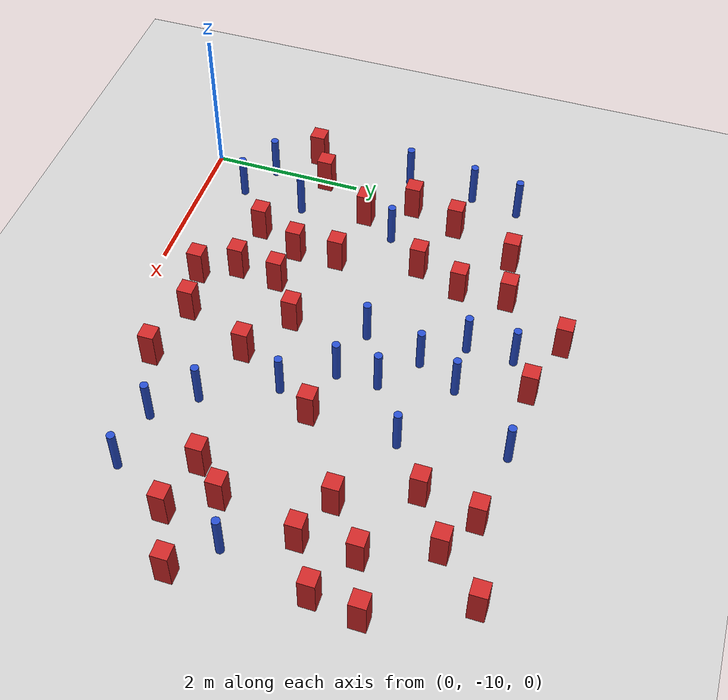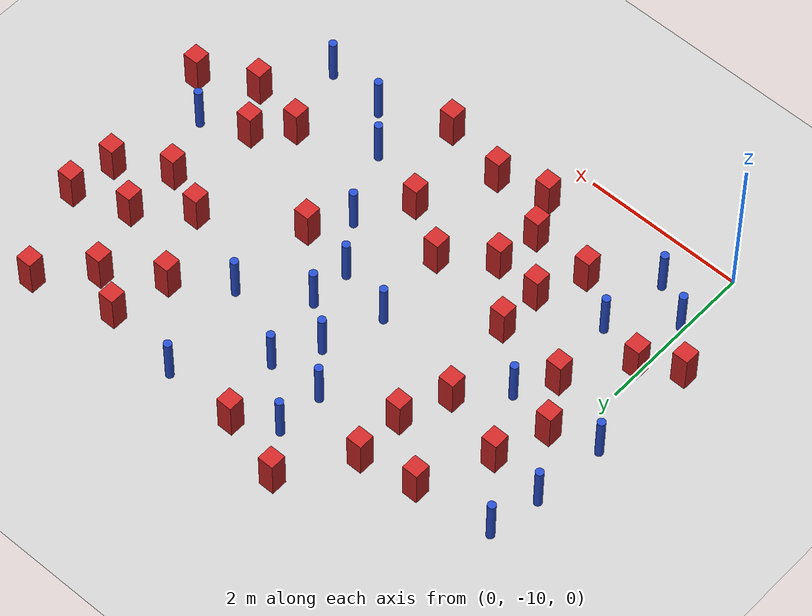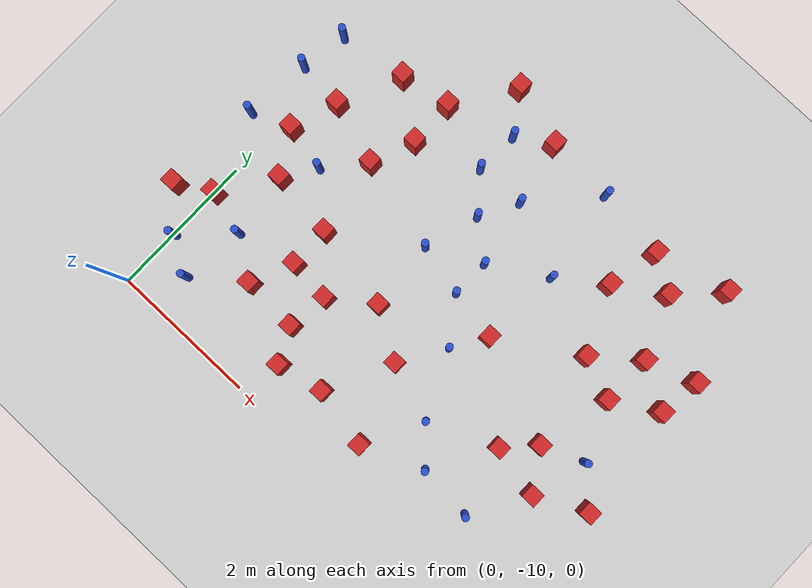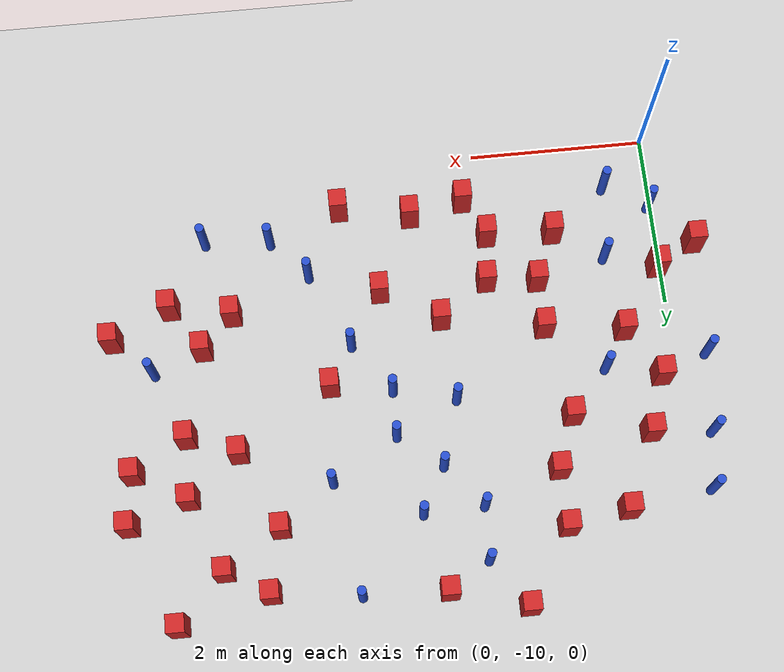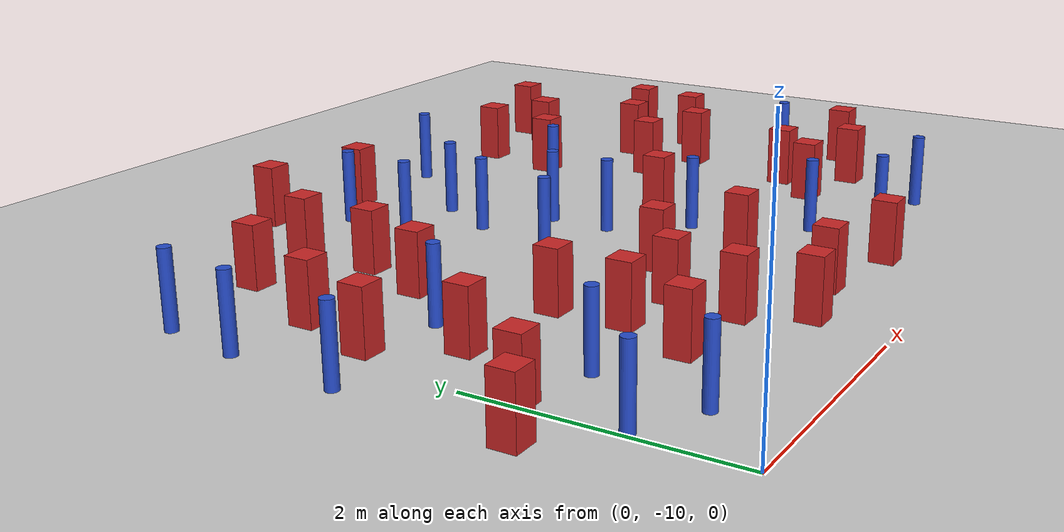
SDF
<sdf version="1.6">
 <world name="default">
  <model name="ground_plane">
   <static>1</static>
   <link name="link">
    <collision name="collision">
     <geometry><plane><normal>0 0 1</normal><size>100 100</size></plane></geometry>
     <surface><friction><ode><mu>100</mu><mu2>50</mu2></ode></friction></surface>
    </collision>
    <visual name="visual">
     <cast_shadows>0</cast_shadows>
     <geometry><plane><normal>0 0 1</normal><size>100 100</size></plane></geometry>
     <material>
      <ambient>1.0 1.0 1.0 1.0</ambient>
      <diffuse>0.8 0.8 0.8 1.0</diffuse>
      <specular>0.01 0.01 0.01 1.000000</specular>
     </material>
    </visual>
   </link>
  </model>
  <model name="square_post_obstacle10">
   <static>true</static>
   <pose>0.0550783046898 -8.40257800408 1.91545236811e-07 -7.35059704564e-06 1.12565212e-07 2.39332434364e-05</pose>
   <link name="link">
    <pose>0 0 0.25 0 -0 0</pose>
    <inertial>
     <mass>100</mass>
     <inertia>
      <ixx>0.166667</ixx>
      <ixy>0</ixy>
      <ixz>0</ixz>
      <iyy>0.166667</iyy>
      <iyz>0</iyz>
      <izz>0.166667</izz>
     </inertia>
    </inertial>
    <collision name="collision"><geometry><box><size>.2 .2 .5</size></box></geometry></collision>
    <visual name="visual">
     <geometry><box><size>.2 .2 .5</size></box></geometry>
     <material>
      <script><name>Gazebo/Red</name><uri>file://media/materials/scripts/gazebo.material</uri></script>
     </material>
    </visual>
   </link>
  </model>
  <model name="square_post_obstacle16">
   <static>true</static>
   <pose>1.46860966695 -6.16280772476 1.91545236811e-07 -7.35059704564e-06 1.12565212e-07 2.39332434364e-05</pose>
   <link name="link">
    <pose>0 0 0.25 0 -0 0</pose>
    <inertial>
     <mass>100</mass>
     <inertia>
      <ixx>0.166667</ixx>
      <ixy>0</ixy>
      <ixz>0</ixz>
      <iyy>0.166667</iyy>
      <iyz>0</iyz>
      <izz>0.166667</izz>
     </inertia>
    </inertial>
    <collision name="collision"><geometry><box><size>.2 .2 .5</size></box></geometry></collision>
    <visual name="visual">
     <geometry><box><size>.2 .2 .5</size></box></geometry>
     <material>
      <script><name>Gazebo/Red</name><uri>file://media/materials/scripts/gazebo.material</uri></script>
     </material>
    </visual>
   </link>
  </model>
  <model name="square_post_obstacle19">
   <static>true</static>
   <pose>2.57718396046 -8.00460723232 1.91545236811e-07 -7.35059704564e-06 1.12565212e-07 2.39332434364e-05</pose>
   <link name="link">
    <pose>0 0 0.25 0 -0 0</pose>
    <inertial>
     <mass>100</mass>
     <inertia>
      <ixx>0.166667</ixx>
      <ixy>0</ixy>
      <ixz>0</ixz>
      <iyy>0.166667</iyy>
      <iyz>0</iyz>
      <izz>0.166667</izz>
     </inertia>
    </inertial>
    <collision name="collision"><geometry><box><size>.2 .2 .5</size></box></geometry></collision>
    <visual name="visual">
     <geometry><box><size>.2 .2 .5</size></box></geometry>
     <material>
      <script><name>Gazebo/Red</name><uri>file://media/materials/scripts/gazebo.material</uri></script>
     </material>
    </visual>
   </link>
  </model>
  <model name="pole_obstacle15">
   <static>true</static>
   <pose>5.1811139625 -9.17330770869 7.38925637345e-09 -8.471706928e-08 1.24976765081e-08 -1.74513093015e-07</pose>
   <link name="link">
    <pose>0 0 0.3 0 -0 0</pose>
    <inertial>
     <mass>1</mass>
     <inertia><ixx>0.145833</ixx><ixy>0</ixy><ixz>0</ixz><iyy>0.145833</iyy><iyz>0</iyz><izz>0.125</izz></inertia>
    </inertial>
    <collision name="collision">
     <geometry><cylinder><radius>0.05</radius><length>.6</length></cylinder></geometry>
    </collision>
    <visual name="visual">
     <geometry><cylinder><radius>0.05</radius><length>.6</length></cylinder></geometry>
     <material>
      <script><name>Gazebo/Blue</name><uri>file://media/materials/scripts/gazebo.material</uri></script>
     </material>
    </visual>
   </link>
  </model>
  <model name="square_post_obstacle24">
   <static>true</static>
   <pose>6.09427884108 -6.54319197838 1.91545236811e-07 -7.35059704564e-06 1.12565212e-07 2.39332434364e-05</pose>
   <link name="link">
    <pose>0 0 0.25 0 -0 0</pose>
    <inertial>
     <mass>100</mass>
     <inertia>
      <ixx>0.166667</ixx>
      <ixy>0</ixy>
      <ixz>0</ixz>
      <iyy>0.166667</iyy>
      <iyz>0</iyz>
      <izz>0.166667</izz>
     </inertia>
    </inertial>
    <collision name="collision"><geometry><box><size>.2 .2 .5</size></box></geometry></collision>
    <visual name="visual">
     <geometry><box><size>.2 .2 .5</size></box></geometry>
     <material>
      <script><name>Gazebo/Red</name><uri>file://media/materials/scripts/gazebo.material</uri></script>
     </material>
    </visual>
   </link>
  </model>
  <model name="pole_obstacle31">
   <static>true</static>
   <pose>3.72274522592 -4.98106664844 7.38925637345e-09 -8.47170692798e-08 1.24976765033e-08 -1.74513093019e-07</pose>
   <link name="link">
    <pose>0 0 0.3 0 -0 0</pose>
    <inertial>
     <mass>1</mass>
     <inertia><ixx>0.145833</ixx><ixy>0</ixy><ixz>0</ixz><iyy>0.145833</iyy><iyz>0</iyz><izz>0.125</izz></inertia>
    </inertial>
    <collision name="collision">
     <geometry><cylinder><radius>0.05</radius><length>.6</length></cylinder></geometry>
    </collision>
    <visual name="visual">
     <geometry><cylinder><radius>0.05</radius><length>.6</length></cylinder></geometry>
     <material>
      <script><name>Gazebo/Blue</name><uri>file://media/materials/scripts/gazebo.material</uri></script>
     </material>
    </visual>
   </link>
  </model>
  <model name="pole_obstacle32">
   <static>true</static>
   <pose>-0.169294901948 -5.77846933836 7.38925637345e-09 -8.47170692799e-08 1.24976765043e-08 -1.74513093019e-07</pose>
   <link name="link">
    <pose>0 0 0.3 0 -0 0</pose>
    <inertial>
     <mass>1</mass>
     <inertia><ixx>0.145833</ixx><ixy>0</ixy><ixz>0</ixz><iyy>0.145833</iyy><iyz>0</iyz><izz>0.125</izz></inertia>
    </inertial>
    <collision name="collision">
     <geometry><cylinder><radius>0.05</radius><length>.6</length></cylinder></geometry>
    </collision>
    <visual name="visual">
     <geometry><cylinder><radius>0.05</radius><length>.6</length></cylinder></geometry>
     <material>
      <script><name>Gazebo/Blue</name><uri>file://media/materials/scripts/gazebo.material</uri></script>
     </material>
    </visual>
   </link>
  </model>
  <model name="square_post_obstacle36">
   <static>true</static>
   <pose>2.18840104832 -9.41564404148 1.91545236811e-07 -7.35059704564e-06 1.12565212e-07 2.39332434364e-05</pose>
   <link name="link">
    <pose>0 0 0.25 0 -0 0</pose>
    <inertial>
     <mass>100</mass>
     <inertia>
      <ixx>0.166667</ixx>
      <ixy>0</ixy>
      <ixz>0</ixz>
      <iyy>0.166667</iyy>
      <iyz>0</iyz>
      <izz>0.166667</izz>
     </inertia>
    </inertial>
    <collision name="collision"><geometry><box><size>.2 .2 .5</size></box></geometry></collision>
    <visual name="visual">
     <geometry><box><size>.2 .2 .5</size></box></geometry>
     <material>
      <script><name>Gazebo/Red</name><uri>file://media/materials/scripts/gazebo.material</uri></script>
     </material>
    </visual>
   </link>
  </model>
  <model name="pole_obstacle42">
   <static>true</static>
   <pose>3.93710257058 -6.24078712769 7.38925637345e-09 -8.47170692798e-08 1.24976765033e-08 -1.74513093019e-07</pose>
   <link name="link">
    <pose>0 0 0.3 0 -0 0</pose>
    <inertial>
     <mass>1</mass>
     <inertia><ixx>0.145833</ixx><ixy>0</ixy><ixz>0</ixz><iyy>0.145833</iyy><iyz>0</iyz><izz>0.125</izz></inertia>
    </inertial>
    <collision name="collision">
     <geometry><cylinder><radius>0.05</radius><length>.6</length></cylinder></geometry>
    </collision>
    <visual name="visual">
     <geometry><cylinder><radius>0.05</radius><length>.6</length></cylinder></geometry>
     <material>
      <script><name>Gazebo/Blue</name><uri>file://media/materials/scripts/gazebo.material</uri></script>
     </material>
    </visual>
   </link>
  </model>
  <model name="square_post_obstacle42">
   <static>true</static>
   <pose>5.677763658 -4.84844297072 1.91545236811e-07 -7.35059704564e-06 1.12565212e-07 2.39332434364e-05</pose>
   <link name="link">
    <pose>0 0 0.25 0 -0 0</pose>
    <inertial>
     <mass>100</mass>
     <inertia>
      <ixx>0.166667</ixx>
      <ixy>0</ixy>
      <ixz>0</ixz>
      <iyy>0.166667</iyy>
      <iyz>0</iyz>
      <izz>0.166667</izz>
     </inertia>
    </inertial>
    <collision name="collision"><geometry><box><size>.2 .2 .5</size></box></geometry></collision>
    <visual name="visual">
     <geometry><box><size>.2 .2 .5</size></box></geometry>
     <material>
      <script><name>Gazebo/Red</name><uri>file://media/materials/scripts/gazebo.material</uri></script>
     </material>
    </visual>
   </link>
  </model>
  <model name="square_post_obstacle53">
   <static>true</static>
   <pose>0.402474292752 -6.48558767274 1.91545236811e-07 -7.35059704564e-06 1.12565212e-07 2.39332434364e-05</pose>
   <link name="link">
    <pose>0 0 0.25 0 -0 0</pose>
    <inertial>
     <mass>100</mass>
     <inertia>
      <ixx>0.166667</ixx>
      <ixy>0</ixy>
      <ixz>0</ixz>
      <iyy>0.166667</iyy>
      <iyz>0</iyz>
      <izz>0.166667</izz>
     </inertia>
    </inertial>
    <collision name="collision"><geometry><box><size>.2 .2 .5</size></box></geometry></collision>
    <visual name="visual">
     <geometry><box><size>.2 .2 .5</size></box></geometry>
     <material>
      <script><name>Gazebo/Red</name><uri>file://media/materials/scripts/gazebo.material</uri></script>
     </material>
    </visual>
   </link>
  </model>
  <model name="pole_obstacle56">
   <static>true</static>
   <pose>0.640084541509 -8.56741284853 7.38925637345e-09 -8.47170692797e-08 1.249767648e-08 -1.74513093032e-07</pose>
   <link name="link">
    <pose>0 0 0.3 0 -0 0</pose>
    <inertial>
     <mass>1</mass>
     <inertia><ixx>0.145833</ixx><ixy>0</ixy><ixz>0</ixz><iyy>0.145833</iyy><iyz>0</iyz><izz>0.125</izz></inertia>
    </inertial>
    <collision name="collision">
     <geometry><cylinder><radius>0.05</radius><length>.6</length></cylinder></geometry>
    </collision>
    <visual name="visual">
     <geometry><cylinder><radius>0.05</radius><length>.6</length></cylinder></geometry>
     <material>
      <script><name>Gazebo/Blue</name><uri>file://media/materials/scripts/gazebo.material</uri></script>
     </material>
    </visual>
   </link>
  </model>
  <model name="pole_obstacle59">
   <static>true</static>
   <pose>5.82953276097 -7.66077457095 7.38925637345e-09 -8.47170692796e-08 1.24976764786e-08 -1.74513093032e-07</pose>
   <link name="link">
    <pose>0 0 0.3 0 -0 0</pose>
    <inertial>
     <mass>1</mass>
     <inertia><ixx>0.145833</ixx><ixy>0</ixy><ixz>0</ixz><iyy>0.145833</iyy><iyz>0</iyz><izz>0.125</izz></inertia>
    </inertial>
    <collision name="collision">
     <geometry><cylinder><radius>0.05</radius><length>.6</length></cylinder></geometry>
    </collision>
    <visual name="visual">
     <geometry><cylinder><radius>0.05</radius><length>.6</length></cylinder></geometry>
     <material>
      <script><name>Gazebo/Blue</name><uri>file://media/materials/scripts/gazebo.material</uri></script>
     </material>
    </visual>
   </link>
  </model>
  <model name="pole_obstacle64">
   <static>true</static>
   <pose>4.43379019858 -9.10965924487 7.38925637345e-09 -8.471706928e-08 1.24976765081e-08 -1.74513093015e-07</pose>
   <link name="link">
    <pose>0 0 0.3 0 -0 0</pose>
    <inertial>
     <mass>1</mass>
     <inertia><ixx>0.145833</ixx><ixy>0</ixy><ixz>0</ixz><iyy>0.145833</iyy><iyz>0</iyz><izz>0.125</izz></inertia>
    </inertial>
    <collision name="collision">
     <geometry><cylinder><radius>0.05</radius><length>.6</length></cylinder></geometry>
    </collision>
    <visual name="visual">
     <geometry><cylinder><radius>0.05</radius><length>.6</length></cylinder></geometry>
     <material>
      <script><name>Gazebo/Blue</name><uri>file://media/materials/scripts/gazebo.material</uri></script>
     </material>
    </visual>
   </link>
  </model>
  <model name="square_post_obstacle70">
   <static>true</static>
   <pose>1.9660436417 -4.72021212821 1.91545236811e-07 -7.35059704564e-06 1.12565212e-07 2.39332434364e-05</pose>
   <link name="link">
    <pose>0 0 0.25 0 -0 0</pose>
    <inertial>
     <mass>100</mass>
     <inertia>
      <ixx>0.166667</ixx>
      <ixy>0</ixy>
      <ixz>0</ixz>
      <iyy>0.166667</iyy>
      <iyz>0</iyz>
      <izz>0.166667</izz>
     </inertia>
    </inertial>
    <collision name="collision"><geometry><box><size>.2 .2 .5</size></box></geometry></collision>
    <visual name="visual">
     <geometry><box><size>.2 .2 .5</size></box></geometry>
     <material>
      <script><name>Gazebo/Red</name><uri>file://media/materials/scripts/gazebo.material</uri></script>
     </material>
    </visual>
   </link>
  </model>
  <model name="square_post_obstacle75">
   <static>true</static>
   <pose>0.538428384571 -7.68666459709 1.91545236811e-07 -7.35059704564e-06 1.12565212e-07 2.39332434364e-05</pose>
   <link name="link">
    <pose>0 0 0.25 0 -0 0</pose>
    <inertial>
     <mass>100</mass>
     <inertia>
      <ixx>0.166667</ixx>
      <ixy>0</ixy>
      <ixz>0</ixz>
      <iyy>0.166667</iyy>
      <iyz>0</iyz>
      <izz>0.166667</izz>
     </inertia>
    </inertial>
    <collision name="collision"><geometry><box><size>.2 .2 .5</size></box></geometry></collision>
    <visual name="visual">
     <geometry><box><size>.2 .2 .5</size></box></geometry>
     <material>
      <script><name>Gazebo/Red</name><uri>file://media/materials/scripts/gazebo.material</uri></script>
     </material>
    </visual>
   </link>
  </model>
  <model name="square_post_obstacle76">
   <static>true</static>
   <pose>6.16633396777 -5.97250795258 1.91545236811e-07 -7.35059704564e-06 1.12565212e-07 2.39332434364e-05</pose>
   <link name="link">
    <pose>0 0 0.25 0 -0 0</pose>
    <inertial>
     <mass>100</mass>
     <inertia>
      <ixx>0.166667</ixx>
      <ixy>0</ixy>
      <ixz>0</ixz>
      <iyy>0.166667</iyy>
      <iyz>0</iyz>
      <izz>0.166667</izz>
     </inertia>
    </inertial>
    <collision name="collision"><geometry><box><size>.2 .2 .5</size></box></geometry></collision>
    <visual name="visual">
     <geometry><box><size>.2 .2 .5</size></box></geometry>
     <material>
      <script><name>Gazebo/Red</name><uri>file://media/materials/scripts/gazebo.material</uri></script>
     </material>
    </visual>
   </link>
  </model>
  <model name="square_post_obstacle77">
   <static>true</static>
   <pose>4.91559397263 -8.27191296884 1.91545236811e-07 -7.35059704564e-06 1.12565212e-07 2.39332434364e-05</pose>
   <link name="link">
    <pose>0 0 0.25 0 -0 0</pose>
    <inertial>
     <mass>100</mass>
     <inertia>
      <ixx>0.166667</ixx>
      <ixy>0</ixy>
      <ixz>0</ixz>
      <iyy>0.166667</iyy>
      <iyz>0</iyz>
      <izz>0.166667</izz>
     </inertia>
    </inertial>
    <collision name="collision"><geometry><box><size>.2 .2 .5</size></box></geometry></collision>
    <visual name="visual">
     <geometry><box><size>.2 .2 .5</size></box></geometry>
     <material>
      <script><name>Gazebo/Red</name><uri>file://media/materials/scripts/gazebo.material</uri></script>
     </material>
    </visual>
   </link>
  </model>
  <model name="pole_obstacle88">
   <static>true</static>
   <pose>3.19655545939 -6.69809416523 7.38925637345e-09 -8.47170692798e-08 1.24976765033e-08 -1.74513093019e-07</pose>
   <link name="link">
    <pose>0 0 0.3 0 -0 0</pose>
    <inertial>
     <mass>1</mass>
     <inertia><ixx>0.145833</ixx><ixy>0</ixy><ixz>0</ixz><iyy>0.145833</iyy><iyz>0</iyz><izz>0.125</izz></inertia>
    </inertial>
    <collision name="collision">
     <geometry><cylinder><radius>0.05</radius><length>.6</length></cylinder></geometry>
    </collision>
    <visual name="visual">
     <geometry><cylinder><radius>0.05</radius><length>.6</length></cylinder></geometry>
     <material>
      <script><name>Gazebo/Blue</name><uri>file://media/materials/scripts/gazebo.material</uri></script>
     </material>
    </visual>
   </link>
  </model>
  <model name="pole_obstacle91">
   <static>true</static>
   <pose>2.31739381288 -5.83164720761 7.38925637345e-09 -8.47170692798e-08 1.24976765033e-08 -1.74513093019e-07</pose>
   <link name="link">
    <pose>0 0 0.3 0 -0 0</pose>
    <inertial>
     <mass>1</mass>
     <inertia><ixx>0.145833</ixx><ixy>0</ixy><ixz>0</ixz><iyy>0.145833</iyy><iyz>0</iyz><izz>0.125</izz></inertia>
    </inertial>
    <collision name="collision">
     <geometry><cylinder><radius>0.05</radius><length>.6</length></cylinder></geometry>
    </collision>
    <visual name="visual">
     <geometry><cylinder><radius>0.05</radius><length>.6</length></cylinder></geometry>
     <material>
      <script><name>Gazebo/Blue</name><uri>file://media/materials/scripts/gazebo.material</uri></script>
     </material>
    </visual>
   </link>
  </model>
  <model name="pole_obstacle94">
   <static>true</static>
   <pose>0.0458947263798 -9.14970774715 7.38925637345e-09 -8.47170692796e-08 1.24976764747e-08 -1.74513093035e-07</pose>
   <link name="link">
    <pose>0 0 0.3 0 -0 0</pose>
    <inertial>
     <mass>1</mass>
     <inertia><ixx>0.145833</ixx><ixy>0</ixy><ixz>0</ixz><iyy>0.145833</iyy><iyz>0</iyz><izz>0.125</izz></inertia>
    </inertial>
    <collision name="collision">
     <geometry><cylinder><radius>0.05</radius><length>.6</length></cylinder></geometry>
    </collision>
    <visual name="visual">
     <geometry><cylinder><radius>0.05</radius><length>.6</length></cylinder></geometry>
     <material>
      <script><name>Gazebo/Blue</name><uri>file://media/materials/scripts/gazebo.material</uri></script>
     </material>
    </visual>
   </link>
  </model>
  <model name="square_post_obstacle84">
   <static>true</static>
   <pose>5.50253061422 -6.208055663 1.91545236811e-07 -7.35059704564e-06 1.12565212e-07 2.39332434364e-05</pose>
   <link name="link">
    <pose>0 0 0.25 0 -0 0</pose>
    <inertial>
     <mass>100</mass>
     <inertia>
      <ixx>0.166667</ixx>
      <ixy>0</ixy>
      <ixz>0</ixz>
      <iyy>0.166667</iyy>
      <iyz>0</iyz>
      <izz>0.166667</izz>
     </inertia>
    </inertial>
    <collision name="collision"><geometry><box><size>.2 .2 .5</size></box></geometry></collision>
    <visual name="visual">
     <geometry><box><size>.2 .2 .5</size></box></geometry>
     <material>
      <script><name>Gazebo/Red</name><uri>file://media/materials/scripts/gazebo.material</uri></script>
     </material>
    </visual>
   </link>
  </model>
  <model name="square_post_obstacle86">
   <static>true</static>
   <pose>1.24362846173 -6.75262196878 1.91545236811e-07 -7.35059704564e-06 1.12565212e-07 2.39332434364e-05</pose>
   <link name="link">
    <pose>0 0 0.25 0 -0 0</pose>
    <inertial>
     <mass>100</mass>
     <inertia>
      <ixx>0.166667</ixx>
      <ixy>0</ixy>
      <ixz>0</ixz>
      <iyy>0.166667</iyy>
      <iyz>0</iyz>
      <izz>0.166667</izz>
     </inertia>
    </inertial>
    <collision name="collision"><geometry><box><size>.2 .2 .5</size></box></geometry></collision>
    <visual name="visual">
     <geometry><box><size>.2 .2 .5</size></box></geometry>
     <material>
      <script><name>Gazebo/Red</name><uri>file://media/materials/scripts/gazebo.material</uri></script>
     </material>
    </visual>
   </link>
  </model>
  <model name="pole_obstacle97">
   <static>true</static>
   <pose>0.539371456783 -9.42880603413 7.38925637345e-09 -8.47170692797e-08 1.24976764765e-08 -1.74513093034e-07</pose>
   <link name="link">
    <pose>0 0 0.3 0 -0 0</pose>
    <inertial>
     <mass>1</mass>
     <inertia><ixx>0.145833</ixx><ixy>0</ixy><ixz>0</ixz><iyy>0.145833</iyy><iyz>0</iyz><izz>0.125</izz></inertia>
    </inertial>
    <collision name="collision">
     <geometry><cylinder><radius>0.05</radius><length>.6</length></cylinder></geometry>
    </collision>
    <visual name="visual">
     <geometry><cylinder><radius>0.05</radius><length>.6</length></cylinder></geometry>
     <material>
      <script><name>Gazebo/Blue</name><uri>file://media/materials/scripts/gazebo.material</uri></script>
     </material>
    </visual>
   </link>
  </model>
  <model name="square_post_obstacle98">
   <static>true</static>
   <pose>1.43141070524 -7.79621350411 1.91545236811e-07 -7.35059704564e-06 1.12565212e-07 2.39332434364e-05</pose>
   <link name="link">
    <pose>0 0 0.25 0 -0 0</pose>
    <inertial>
     <mass>100</mass>
     <inertia>
      <ixx>0.166667</ixx>
      <ixy>0</ixy>
      <ixz>0</ixz>
      <iyy>0.166667</iyy>
      <iyz>0</iyz>
      <izz>0.166667</izz>
     </inertia>
    </inertial>
    <collision name="collision"><geometry><box><size>.2 .2 .5</size></box></geometry></collision>
    <visual name="visual">
     <geometry><box><size>.2 .2 .5</size></box></geometry>
     <material>
      <script><name>Gazebo/Red</name><uri>file://media/materials/scripts/gazebo.material</uri></script>
     </material>
    </visual>
   </link>
  </model>
  <model name="pole_obstacle114">
   <static>true</static>
   <pose>-0.347893979039 -7.3246769983 7.38925637345e-09 -8.471706928e-08 1.24976765079e-08 -1.74513093015e-07</pose>
   <link name="link">
    <pose>0 0 0.3 0 -0 0</pose>
    <inertial>
     <mass>1</mass>
     <inertia><ixx>0.145833</ixx><ixy>0</ixy><ixz>0</ixz><iyy>0.145833</iyy><iyz>0</iyz><izz>0.125</izz></inertia>
    </inertial>
    <collision name="collision">
     <geometry><cylinder><radius>0.05</radius><length>.6</length></cylinder></geometry>
    </collision>
    <visual name="visual">
     <geometry><cylinder><radius>0.05</radius><length>.6</length></cylinder></geometry>
     <material>
      <script><name>Gazebo/Blue</name><uri>file://media/materials/scripts/gazebo.material</uri></script>
     </material>
    </visual>
   </link>
  </model>
  <model name="square_post_obstacle103">
   <static>true</static>
   <pose>6.27175865972 -8.08634179171 1.91545236811e-07 -7.35059704564e-06 1.12565212e-07 2.39332434364e-05</pose>
   <link name="link">
    <pose>0 0 0.25 0 -0 0</pose>
    <inertial>
     <mass>100</mass>
     <inertia>
      <ixx>0.166667</ixx>
      <ixy>0</ixy>
      <ixz>0</ixz>
      <iyy>0.166667</iyy>
      <iyz>0</iyz>
      <izz>0.166667</izz>
     </inertia>
    </inertial>
    <collision name="collision"><geometry><box><size>.2 .2 .5</size></box></geometry></collision>
    <visual name="visual">
     <geometry><box><size>.2 .2 .5</size></box></geometry>
     <material>
      <script><name>Gazebo/Red</name><uri>file://media/materials/scripts/gazebo.material</uri></script>
     </material>
    </visual>
   </link>
  </model>
  <model name="square_post_obstacle109">
   <static>true</static>
   <pose>1.45036082959 -5.52838680627 1.91545236811e-07 -7.35059704564e-06 1.12565212e-07 2.39332434364e-05</pose>
   <link name="link">
    <pose>0 0 0.25 0 -0 0</pose>
    <inertial>
     <mass>100</mass>
     <inertia>
      <ixx>0.166667</ixx>
      <ixy>0</ixy>
      <ixz>0</ixz>
      <iyy>0.166667</iyy>
      <iyz>0</iyz>
      <izz>0.166667</izz>
     </inertia>
    </inertial>
    <collision name="collision"><geometry><box><size>.2 .2 .5</size></box></geometry></collision>
    <visual name="visual">
     <geometry><box><size>.2 .2 .5</size></box></geometry>
     <material>
      <script><name>Gazebo/Red</name><uri>file://media/materials/scripts/gazebo.material</uri></script>
     </material>
    </visual>
   </link>
  </model>
  <model name="pole_obstacle135">
   <static>true</static>
   <pose>-0.272547409293 -6.41804756203 7.38925637345e-09 -8.47170692799e-08 1.24976765096e-08 -1.74513093014e-07</pose>
   <link name="link">
    <pose>0 0 0.3 0 -0 0</pose>
    <inertial>
     <mass>1</mass>
     <inertia><ixx>0.145833</ixx><ixy>0</ixy><ixz>0</ixz><iyy>0.145833</iyy><iyz>0</iyz><izz>0.125</izz></inertia>
    </inertial>
    <collision name="collision">
     <geometry><cylinder><radius>0.05</radius><length>.6</length></cylinder></geometry>
    </collision>
    <visual name="visual">
     <geometry><cylinder><radius>0.05</radius><length>.6</length></cylinder></geometry>
     <material>
      <script><name>Gazebo/Blue</name><uri>file://media/materials/scripts/gazebo.material</uri></script>
     </material>
    </visual>
   </link>
  </model>
  <model name="square_post_obstacle116">
   <static>true</static>
   <pose>2.79373720606 -4.96010696268 1.91545236811e-07 -7.35059704564e-06 1.12565212e-07 2.39332434364e-05</pose>
   <link name="link">
    <pose>0 0 0.25 0 -0 0</pose>
    <inertial>
     <mass>100</mass>
     <inertia>
      <ixx>0.166667</ixx>
      <ixy>0</ixy>
      <ixz>0</ixz>
      <iyy>0.166667</iyy>
      <iyz>0</iyz>
      <izz>0.166667</izz>
     </inertia>
    </inertial>
    <collision name="collision"><geometry><box><size>.2 .2 .5</size></box></geometry></collision>
    <visual name="visual">
     <geometry><box><size>.2 .2 .5</size></box></geometry>
     <material>
      <script><name>Gazebo/Red</name><uri>file://media/materials/scripts/gazebo.material</uri></script>
     </material>
    </visual>
   </link>
  </model>
  <model name="pole_obstacle137">
   <static>true</static>
   <pose>4.02330103345 -8.6603003662 7.38925637345e-09 -8.47170692799e-08 1.24976765044e-08 -1.74513093018e-07</pose>
   <link name="link">
    <pose>0 0 0.3 0 -0 0</pose>
    <inertial>
     <mass>1</mass>
     <inertia><ixx>0.145833</ixx><ixy>0</ixy><ixz>0</ixz><iyy>0.145833</iyy><iyz>0</iyz><izz>0.125</izz></inertia>
    </inertial>
    <collision name="collision">
     <geometry><cylinder><radius>0.05</radius><length>.6</length></cylinder></geometry>
    </collision>
    <visual name="visual">
     <geometry><cylinder><radius>0.05</radius><length>.6</length></cylinder></geometry>
     <material>
      <script><name>Gazebo/Blue</name><uri>file://media/materials/scripts/gazebo.material</uri></script>
     </material>
    </visual>
   </link>
  </model>
  <model name="square_post_obstacle126">
   <static>true</static>
   <pose>3.8788429552 -7.33520548522 1.91545236811e-07 -7.35059704564e-06 1.12565212e-07 2.39332434364e-05</pose>
   <link name="link">
    <pose>0 0 0.25 0 -0 0</pose>
    <inertial>
     <mass>100</mass>
     <inertia>
      <ixx>0.166667</ixx>
      <ixy>0</ixy>
      <ixz>0</ixz>
      <iyy>0.166667</iyy>
      <iyz>0</iyz>
      <izz>0.166667</izz>
     </inertia>
    </inertial>
    <collision name="collision"><geometry><box><size>.2 .2 .5</size></box></geometry></collision>
    <visual name="visual">
     <geometry><box><size>.2 .2 .5</size></box></geometry>
     <material>
      <script><name>Gazebo/Red</name><uri>file://media/materials/scripts/gazebo.material</uri></script>
     </material>
    </visual>
   </link>
  </model>
  <model name="square_post_obstacle129">
   <static>true</static>
   <pose>1.44369013509 -8.35948033249 1.91545236811e-07 -7.35059704564e-06 1.12565212e-07 2.39332434364e-05</pose>
   <link name="link">
    <pose>0 0 0.25 0 -0 0</pose>
    <inertial>
     <mass>100</mass>
     <inertia>
      <ixx>0.166667</ixx>
      <ixy>0</ixy>
      <ixz>0</ixz>
      <iyy>0.166667</iyy>
      <iyz>0</iyz>
      <izz>0.166667</izz>
     </inertia>
    </inertial>
    <collision name="collision"><geometry><box><size>.2 .2 .5</size></box></geometry></collision>
    <visual name="visual">
     <geometry><box><size>.2 .2 .5</size></box></geometry>
     <material>
      <script><name>Gazebo/Red</name><uri>file://media/materials/scripts/gazebo.material</uri></script>
     </material>
    </visual>
   </link>
  </model>
  <model name="square_post_obstacle137">
   <static>true</static>
   <pose>4.93375257041 -6.67254688144 1.91545236811e-07 -7.35059704564e-06 1.12565212e-07 2.39332434364e-05</pose>
   <link name="link">
    <pose>0 0 0.25 0 -0 0</pose>
    <inertial>
     <mass>100</mass>
     <inertia>
      <ixx>0.166667</ixx>
      <ixy>0</ixy>
      <ixz>0</ixz>
      <iyy>0.166667</iyy>
      <iyz>0</iyz>
      <izz>0.166667</izz>
     </inertia>
    </inertial>
    <collision name="collision"><geometry><box><size>.2 .2 .5</size></box></geometry></collision>
    <visual name="visual">
     <geometry><box><size>.2 .2 .5</size></box></geometry>
     <material>
      <script><name>Gazebo/Red</name><uri>file://media/materials/scripts/gazebo.material</uri></script>
     </material>
    </visual>
   </link>
  </model>
  <model name="square_post_obstacle143">
   <static>true</static>
   <pose>4.53389618132 -5.80056406477 1.91545236811e-07 -7.35059704564e-06 1.12565212e-07 2.39332434364e-05</pose>
   <link name="link">
    <pose>0 0 0.25 0 -0 0</pose>
    <inertial>
     <mass>100</mass>
     <inertia>
      <ixx>0.166667</ixx>
      <ixy>0</ixy>
      <ixz>0</ixz>
      <iyy>0.166667</iyy>
      <iyz>0</iyz>
      <izz>0.166667</izz>
     </inertia>
    </inertial>
    <collision name="collision"><geometry><box><size>.2 .2 .5</size></box></geometry></collision>
    <visual name="visual">
     <geometry><box><size>.2 .2 .5</size></box></geometry>
     <material>
      <script><name>Gazebo/Red</name><uri>file://media/materials/scripts/gazebo.material</uri></script>
     </material>
    </visual>
   </link>
  </model>
  <model name="square_post_obstacle148">
   <static>true</static>
   <pose>4.68382935633 -5.10424383101 1.91545236811e-07 -7.35059704564e-06 1.12565212e-07 2.39332434364e-05</pose>
   <link name="link">
    <pose>0 0 0.25 0 -0 0</pose>
    <inertial>
     <mass>100</mass>
     <inertia>
      <ixx>0.166667</ixx>
      <ixy>0</ixy>
      <ixz>0</ixz>
      <iyy>0.166667</iyy>
      <iyz>0</iyz>
      <izz>0.166667</izz>
     </inertia>
    </inertial>
    <collision name="collision"><geometry><box><size>.2 .2 .5</size></box></geometry></collision>
    <visual name="visual">
     <geometry><box><size>.2 .2 .5</size></box></geometry>
     <material>
      <script><name>Gazebo/Red</name><uri>file://media/materials/scripts/gazebo.material</uri></script>
     </material>
    </visual>
   </link>
  </model>
  <model name="pole_obstacle165">
   <static>true</static>
   <pose>3.19163296577 -7.21768084526 7.38925637345e-09 -8.47170692798e-08 1.24976765033e-08 -1.74513093019e-07</pose>
   <link name="link">
    <pose>0 0 0.3 0 -0 0</pose>
    <inertial>
     <mass>1</mass>
     <inertia><ixx>0.145833</ixx><ixy>0</ixy><ixz>0</ixz><iyy>0.145833</iyy><iyz>0</iyz><izz>0.125</izz></inertia>
    </inertial>
    <collision name="collision">
     <geometry><cylinder><radius>0.05</radius><length>.6</length></cylinder></geometry>
    </collision>
    <visual name="visual">
     <geometry><cylinder><radius>0.05</radius><length>.6</length></cylinder></geometry>
     <material>
      <script><name>Gazebo/Blue</name><uri>file://media/materials/scripts/gazebo.material</uri></script>
     </material>
    </visual>
   </link>
  </model>
  <model name="square_post_obstacle165">
   <static>true</static>
   <pose>0.193432406943 -7.11985445342 1.91545236811e-07 -7.35059704564e-06 1.12565212e-07 2.39332434364e-05</pose>
   <link name="link">
    <pose>0 0 0.25 0 -0 0</pose>
    <inertial>
     <mass>100</mass>
     <inertia>
      <ixx>0.166667</ixx>
      <ixy>0</ixy>
      <ixz>0</ixz>
      <iyy>0.166667</iyy>
      <iyz>0</iyz>
      <izz>0.166667</izz>
     </inertia>
    </inertial>
    <collision name="collision"><geometry><box><size>.2 .2 .5</size></box></geometry></collision>
    <visual name="visual">
     <geometry><box><size>.2 .2 .5</size></box></geometry>
     <material>
      <script><name>Gazebo/Red</name><uri>file://media/materials/scripts/gazebo.material</uri></script>
     </material>
    </visual>
   </link>
  </model>
  <model name="square_post_obstacle166">
   <static>true</static>
   <pose>1.95623029949 -8.95892755896 1.91545236811e-07 -7.35059704564e-06 1.12565212e-07 2.39332434364e-05</pose>
   <link name="link">
    <pose>0 0 0.25 0 -0 0</pose>
    <inertial>
     <mass>100</mass>
     <inertia>
      <ixx>0.166667</ixx>
      <ixy>0</ixy>
      <ixz>0</ixz>
      <iyy>0.166667</iyy>
      <iyz>0</iyz>
      <izz>0.166667</izz>
     </inertia>
    </inertial>
    <collision name="collision"><geometry><box><size>.2 .2 .5</size></box></geometry></collision>
    <visual name="visual">
     <geometry><box><size>.2 .2 .5</size></box></geometry>
     <material>
      <script><name>Gazebo/Red</name><uri>file://media/materials/scripts/gazebo.material</uri></script>
     </material>
    </visual>
   </link>
  </model>
  <model name="square_post_obstacle169">
   <static>true</static>
   <pose>5.61283956976 -8.41422382552 1.91545236811e-07 -7.35059704564e-06 1.12565212e-07 2.39332434364e-05</pose>
   <link name="link">
    <pose>0 0 0.25 0 -0 0</pose>
    <inertial>
     <mass>100</mass>
     <inertia>
      <ixx>0.166667</ixx>
      <ixy>0</ixy>
      <ixz>0</ixz>
      <iyy>0.166667</iyy>
      <iyz>0</iyz>
      <izz>0.166667</izz>
     </inertia>
    </inertial>
    <collision name="collision"><geometry><box><size>.2 .2 .5</size></box></geometry></collision>
    <visual name="visual">
     <geometry><box><size>.2 .2 .5</size></box></geometry>
     <material>
      <script><name>Gazebo/Red</name><uri>file://media/materials/scripts/gazebo.material</uri></script>
     </material>
    </visual>
   </link>
  </model>
  <model name="square_post_obstacle178">
   <static>true</static>
   <pose>3.23484654622 -8.39461454429 1.91545236811e-07 -7.35059704564e-06 1.12565212e-07 2.39332434364e-05</pose>
   <link name="link">
    <pose>0 0 0.25 0 -0 0</pose>
    <inertial>
     <mass>100</mass>
     <inertia>
      <ixx>0.166667</ixx>
      <ixy>0</ixy>
      <ixz>0</ixz>
      <iyy>0.166667</iyy>
      <iyz>0</iyz>
      <izz>0.166667</izz>
     </inertia>
    </inertial>
    <collision name="collision"><geometry><box><size>.2 .2 .5</size></box></geometry></collision>
    <visual name="visual">
     <geometry><box><size>.2 .2 .5</size></box></geometry>
     <material>
      <script><name>Gazebo/Red</name><uri>file://media/materials/scripts/gazebo.material</uri></script>
     </material>
    </visual>
   </link>
  </model>
  <model name="square_post_obstacle185">
   <static>true</static>
   <pose>5.26665761185 -7.89209650674 1.91545236811e-07 -7.35059704564e-06 1.12565212e-07 2.39332434364e-05</pose>
   <link name="link">
    <pose>0 0 0.25 0 -0 0</pose>
    <inertial>
     <mass>100</mass>
     <inertia>
      <ixx>0.166667</ixx>
      <ixy>0</ixy>
      <ixz>0</ixz>
      <iyy>0.166667</iyy>
      <iyz>0</iyz>
      <izz>0.166667</izz>
     </inertia>
    </inertial>
    <collision name="collision"><geometry><box><size>.2 .2 .5</size></box></geometry></collision>
    <visual name="visual">
     <geometry><box><size>.2 .2 .5</size></box></geometry>
     <material>
      <script><name>Gazebo/Red</name><uri>file://media/materials/scripts/gazebo.material</uri></script>
     </material>
    </visual>
   </link>
  </model>
  <model name="square_post_obstacle187">
   <static>true</static>
   <pose>5.16368136385 -5.38970017254 1.91545236811e-07 -7.35059704564e-06 1.12565212e-07 2.39332434364e-05</pose>
   <link name="link">
    <pose>0 0 0.25 0 -0 0</pose>
    <inertial>
     <mass>100</mass>
     <inertia>
      <ixx>0.166667</ixx>
      <ixy>0</ixy>
      <ixz>0</ixz>
      <iyy>0.166667</iyy>
      <iyz>0</iyz>
      <izz>0.166667</izz>
     </inertia>
    </inertial>
    <collision name="collision"><geometry><box><size>.2 .2 .5</size></box></geometry></collision>
    <visual name="visual">
     <geometry><box><size>.2 .2 .5</size></box></geometry>
     <material>
      <script><name>Gazebo/Red</name><uri>file://media/materials/scripts/gazebo.material</uri></script>
     </material>
    </visual>
   </link>
  </model>
  <model name="square_post_obstacle188">
   <static>true</static>
   <pose>2.01916296623 -8.40993353574 1.91545236811e-07 -7.35059704564e-06 1.12565212e-07 2.39332434364e-05</pose>
   <link name="link">
    <pose>0 0 0.25 0 -0 0</pose>
    <inertial>
     <mass>100</mass>
     <inertia>
      <ixx>0.166667</ixx>
      <ixy>0</ixy>
      <ixz>0</ixz>
      <iyy>0.166667</iyy>
      <iyz>0</iyz>
      <izz>0.166667</izz>
     </inertia>
    </inertial>
    <collision name="collision"><geometry><box><size>.2 .2 .5</size></box></geometry></collision>
    <visual name="visual">
     <geometry><box><size>.2 .2 .5</size></box></geometry>
     <material>
      <script><name>Gazebo/Red</name><uri>file://media/materials/scripts/gazebo.material</uri></script>
     </material>
    </visual>
   </link>
  </model>
  <model name="square_post_obstacle192">
   <static>true</static>
   <pose>3.61543646799 -9.43934935567 1.91545236811e-07 -7.35059704564e-06 1.12565212e-07 2.39332434364e-05</pose>
   <link name="link">
    <pose>0 0 0.25 0 -0 0</pose>
    <inertial>
     <mass>100</mass>
     <inertia>
      <ixx>0.166667</ixx>
      <ixy>0</ixy>
      <ixz>0</ixz>
      <iyy>0.166667</iyy>
      <iyz>0</iyz>
      <izz>0.166667</izz>
     </inertia>
    </inertial>
    <collision name="collision"><geometry><box><size>.2 .2 .5</size></box></geometry></collision>
    <visual name="visual">
     <geometry><box><size>.2 .2 .5</size></box></geometry>
     <material>
      <script><name>Gazebo/Red</name><uri>file://media/materials/scripts/gazebo.material</uri></script>
     </material>
    </visual>
   </link>
  </model>
  <model name="square_post_obstacle193">
   <static>true</static>
   <pose>5.49594491845 -6.89517453959 1.91545236811e-07 -7.35059704564e-06 1.12565212e-07 2.39332434364e-05</pose>
   <link name="link">
    <pose>0 0 0.25 0 -0 0</pose>
    <inertial>
     <mass>100</mass>
     <inertia>
      <ixx>0.166667</ixx>
      <ixy>0</ixy>
      <ixz>0</ixz>
      <iyy>0.166667</iyy>
      <iyz>0</iyz>
      <izz>0.166667</izz>
     </inertia>
    </inertial>
    <collision name="collision"><geometry><box><size>.2 .2 .5</size></box></geometry></collision>
    <visual name="visual">
     <geometry><box><size>.2 .2 .5</size></box></geometry>
     <material>
      <script><name>Gazebo/Red</name><uri>file://media/materials/scripts/gazebo.material</uri></script>
     </material>
    </visual>
   </link>
  </model>
  <model name="square_post_obstacle194">
   <static>true</static>
   <pose>0.769924359296 -5.65049568267 1.91545236811e-07 -7.35059704564e-06 1.12565212e-07 2.39332434364e-05</pose>
   <link name="link">
    <pose>0 0 0.25 0 -0 0</pose>
    <inertial>
     <mass>100</mass>
     <inertia>
      <ixx>0.166667</ixx>
      <ixy>0</ixy>
      <ixz>0</ixz>
      <iyy>0.166667</iyy>
      <iyz>0</iyz>
      <izz>0.166667</izz>
     </inertia>
    </inertial>
    <collision name="collision"><geometry><box><size>.2 .2 .5</size></box></geometry></collision>
    <visual name="visual">
     <geometry><box><size>.2 .2 .5</size></box></geometry>
     <material>
      <script><name>Gazebo/Red</name><uri>file://media/materials/scripts/gazebo.material</uri></script>
     </material>
    </visual>
   </link>
  </model>
  <model name="square_post_obstacle198">
   <static>true</static>
   <pose>1.20013006945 -8.92462065826 1.91545236811e-07 -7.35059704564e-06 1.12565212e-07 2.39332434364e-05</pose>
   <link name="link">
    <pose>0 0 0.25 0 -0 0</pose>
    <inertial>
     <mass>100</mass>
     <inertia>
      <ixx>0.166667</ixx>
      <ixy>0</ixy>
      <ixz>0</ixz>
      <iyy>0.166667</iyy>
      <iyz>0</iyz>
      <izz>0.166667</izz>
     </inertia>
    </inertial>
    <collision name="collision"><geometry><box><size>.2 .2 .5</size></box></geometry></collision>
    <visual name="visual">
     <geometry><box><size>.2 .2 .5</size></box></geometry>
     <material>
      <script><name>Gazebo/Red</name><uri>file://media/materials/scripts/gazebo.material</uri></script>
     </material>
    </visual>
   </link>
  </model>
  <model name="pole_obstacle189">
   <static>true</static>
   <pose>0.800510760508 -7.25210873142 7.38925637345e-09 -8.471706928e-08 1.24976765086e-08 -1.74513093015e-07</pose>
   <link name="link">
    <pose>0 0 0.3 0 -0 0</pose>
    <inertial>
     <mass>1</mass>
     <inertia><ixx>0.145833</ixx><ixy>0</ixy><ixz>0</ixz><iyy>0.145833</iyy><iyz>0</iyz><izz>0.125</izz></inertia>
    </inertial>
    <collision name="collision">
     <geometry><cylinder><radius>0.05</radius><length>.6</length></cylinder></geometry>
    </collision>
    <visual name="visual">
     <geometry><cylinder><radius>0.05</radius><length>.6</length></cylinder></geometry>
     <material>
      <script><name>Gazebo/Blue</name><uri>file://media/materials/scripts/gazebo.material</uri></script>
     </material>
    </visual>
   </link>
  </model>
  <model name="pole_obstacle191">
   <static>true</static>
   <pose>2.71480944568 -6.31281201127 7.38925637345e-09 -8.47170692798e-08 1.24976765033e-08 -1.74513093019e-07</pose>
   <link name="link">
    <pose>0 0 0.3 0 -0 0</pose>
    <inertial>
     <mass>1</mass>
     <inertia><ixx>0.145833</ixx><ixy>0</ixy><ixz>0</ixz><iyy>0.145833</iyy><iyz>0</iyz><izz>0.125</izz></inertia>
    </inertial>
    <collision name="collision">
     <geometry><cylinder><radius>0.05</radius><length>.6</length></cylinder></geometry>
    </collision>
    <visual name="visual">
     <geometry><cylinder><radius>0.05</radius><length>.6</length></cylinder></geometry>
     <material>
      <script><name>Gazebo/Blue</name><uri>file://media/materials/scripts/gazebo.material</uri></script>
     </material>
    </visual>
   </link>
  </model>
  <model name="pole_obstacle192">
   <static>true</static>
   <pose>2.98894579052 -5.80382947652 7.38925637345e-09 -8.47170692798e-08 1.24976765033e-08 -1.74513093019e-07</pose>
   <link name="link">
    <pose>0 0 0.3 0 -0 0</pose>
    <inertial>
     <mass>1</mass>
     <inertia><ixx>0.145833</ixx><ixy>0</ixy><ixz>0</ixz><iyy>0.145833</iyy><iyz>0</iyz><izz>0.125</izz></inertia>
    </inertial>
    <collision name="collision">
     <geometry><cylinder><radius>0.05</radius><length>.6</length></cylinder></geometry>
    </collision>
    <visual name="visual">
     <geometry><cylinder><radius>0.05</radius><length>.6</length></cylinder></geometry>
     <material>
      <script><name>Gazebo/Blue</name><uri>file://media/materials/scripts/gazebo.material</uri></script>
     </material>
    </visual>
   </link>
  </model>
  <model name="pole_obstacle200">
   <static>true</static>
   <pose>2.33544141064 -5.23789439494 7.38925637345e-09 -8.47170692798e-08 1.24976765033e-08 -1.74513093019e-07</pose>
   <link name="link">
    <pose>0 0 0.3 0 -0 0</pose>
    <inertial>
     <mass>1</mass>
     <inertia><ixx>0.145833</ixx><ixy>0</ixy><ixz>0</ixz><iyy>0.145833</iyy><iyz>0</iyz><izz>0.125</izz></inertia>
    </inertial>
    <collision name="collision">
     <geometry><cylinder><radius>0.05</radius><length>.6</length></cylinder></geometry>
    </collision>
    <visual name="visual">
     <geometry><cylinder><radius>0.05</radius><length>.6</length></cylinder></geometry>
     <material>
      <script><name>Gazebo/Blue</name><uri>file://media/materials/scripts/gazebo.material</uri></script>
     </material>
    </visual>
   </link>
  </model>
  <model name="pole_obstacle209">
   <static>true</static>
   <pose>2.49442948928 -7.05459549985 7.38925637345e-09 -8.47170692798e-08 1.24976765033e-08 -1.74513093019e-07</pose>
   <link name="link">
    <pose>0 0 0.3 0 -0 0</pose>
    <inertial>
     <mass>1</mass>
     <inertia><ixx>0.145833</ixx><ixy>0</ixy><ixz>0</ixz><iyy>0.145833</iyy><iyz>0</iyz><izz>0.125</izz></inertia>
    </inertial>
    <collision name="collision">
     <geometry><cylinder><radius>0.05</radius><length>.6</length></cylinder></geometry>
    </collision>
    <visual name="visual">
     <geometry><cylinder><radius>0.05</radius><length>.6</length></cylinder></geometry>
     <material>
      <script><name>Gazebo/Blue</name><uri>file://media/materials/scripts/gazebo.material</uri></script>
     </material>
    </visual>
   </link>
  </model>
  <model name="pole_obstacle217">
   <static>true</static>
   <pose>3.60625142362 -7.78894618747 7.38925637345e-09 -8.47170692798e-08 1.24976765033e-08 -1.74513093019e-07</pose>
   <link name="link">
    <pose>0 0 0.3 0 -0 0</pose>
    <inertial>
     <mass>1</mass>
     <inertia><ixx>0.145833</ixx><ixy>0</ixy><ixz>0</ixz><iyy>0.145833</iyy><iyz>0</iyz><izz>0.125</izz></inertia>
    </inertial>
    <collision name="collision">
     <geometry><cylinder><radius>0.05</radius><length>.6</length></cylinder></geometry>
    </collision>
    <visual name="visual">
     <geometry><cylinder><radius>0.05</radius><length>.6</length></cylinder></geometry>
     <material>
      <script><name>Gazebo/Blue</name><uri>file://media/materials/scripts/gazebo.material</uri></script>
     </material>
    </visual>
   </link>
  </model>
  <model name="square_post_obstacle218">
   <static>true</static>
   <pose>2.8085799648 -9.28238001192 1.91545236811e-07 -7.35059704564e-06 1.12565212e-07 2.39332434364e-05</pose>
   <link name="link">
    <pose>0 0 0.25 0 -0 0</pose>
    <inertial>
     <mass>100</mass>
     <inertia>
      <ixx>0.166667</ixx>
      <ixy>0</ixy>
      <ixz>0</ixz>
      <iyy>0.166667</iyy>
      <iyz>0</iyz>
      <izz>0.166667</izz>
     </inertia>
    </inertial>
    <collision name="collision"><geometry><box><size>.2 .2 .5</size></box></geometry></collision>
    <visual name="visual">
     <geometry><box><size>.2 .2 .5</size></box></geometry>
     <material>
      <script><name>Gazebo/Red</name><uri>file://media/materials/scripts/gazebo.material</uri></script>
     </material>
    </visual>
   </link>
  </model>
  <model name="square_post_obstacle224">
   <static>true</static>
   <pose>-0.399697035195 -8.65900001192 1.91545236811e-07 -7.35059704564e-06 1.12565212e-07 2.39332434364e-05</pose>
   <link name="link">
    <pose>0 0 0.25 0 -0 0</pose>
    <inertial>
     <mass>100</mass>
     <inertia>
      <ixx>0.166667</ixx>
      <ixy>0</ixy>
      <ixz>0</ixz>
      <iyy>0.166667</iyy>
      <iyz>0</iyz>
      <izz>0.166667</izz>
     </inertia>
    </inertial>
    <collision name="collision"><geometry><box><size>.2 .2 .5</size></box></geometry></collision>
    <visual name="visual">
     <geometry><box><size>.2 .2 .5</size></box></geometry>
     <material>
      <script><name>Gazebo/Red</name><uri>file://media/materials/scripts/gazebo.material</uri></script>
     </material>
    </visual>
   </link>
  </model>
 </world>
</sdf>
